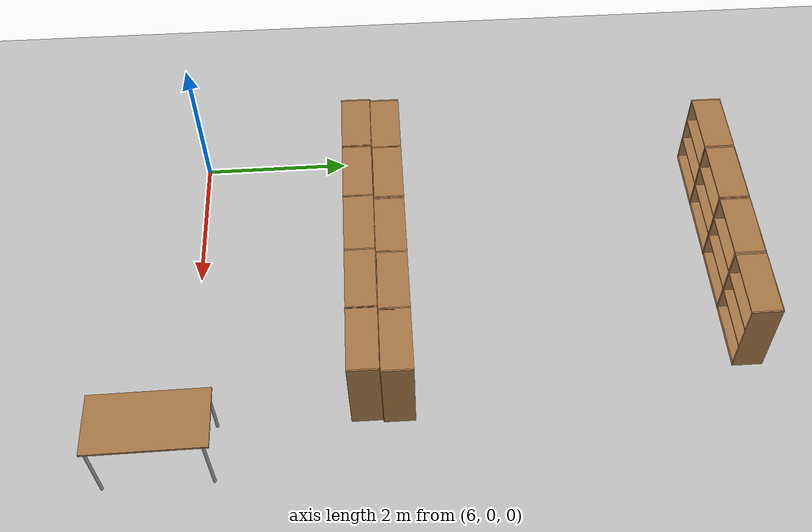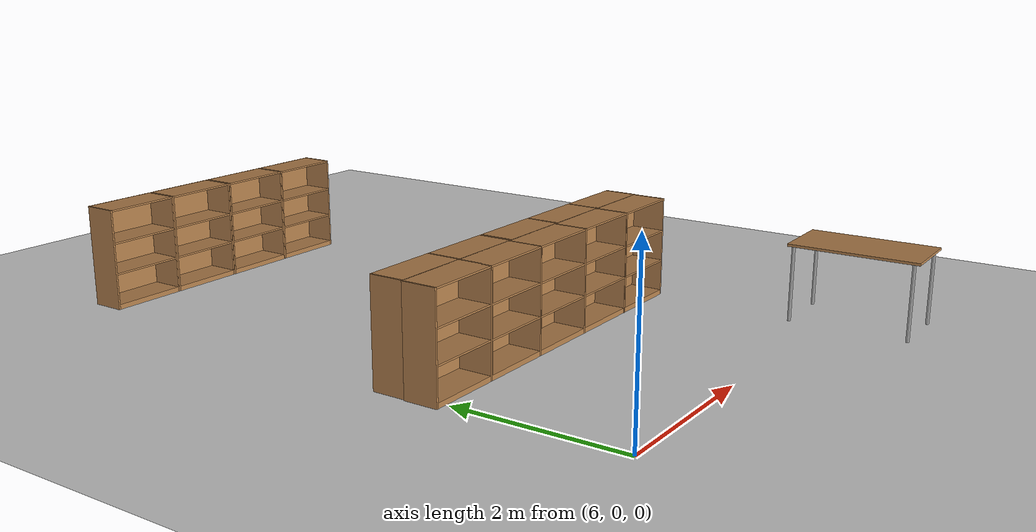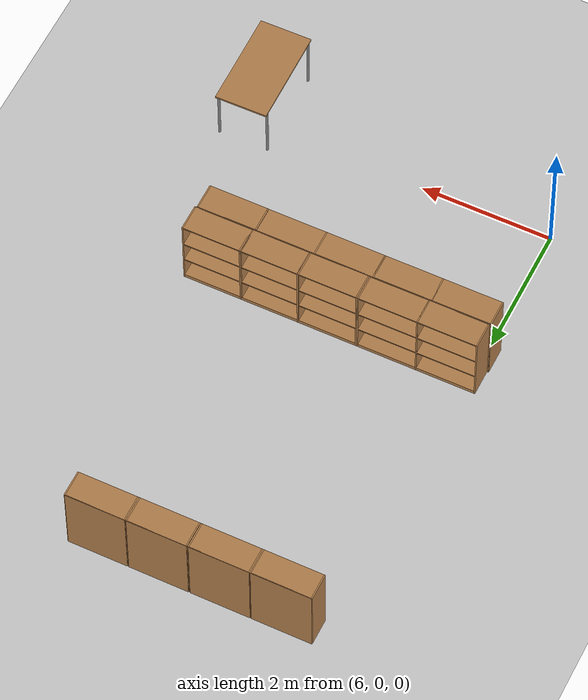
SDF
<sdf version="1.7">
 <world name="default">
  <model name="ground_plane">
   <static>1</static>
   <link name="ground_link">
    <collision name="collision">
     <geometry><plane><normal>0 0 1</normal><size>100 100</size></plane></geometry>
     <surface><friction><ode><mu>100</mu><mu2>50</mu2></ode></friction></surface>
    </collision>
    <visual name="visual">
     <cast_shadows>0</cast_shadows>
     <geometry><plane><normal>0 0 1</normal><size>100 100</size></plane></geometry>
     <material>
      <script><uri>file://media/materials/scripts/gazebo.material</uri><name>Gazebo/Grey</name></script>
     </material>
    </visual>
   </link>
  </model>
  <model name="bookshelf_clone_0_clone_0_clone_clone_clone_clone_clone_1_clone_clone_clone_clone_clone_clone_clone_clone_clone_clone_0_clone_clone_clone_clone_clone_0_clone_1_clone_clone">
   <static>1</static>
   <link name="link">
    <inertial><mass>1</mass></inertial>
    <collision name="back">
     <pose>0 0.005 0.6 0 -0 0</pose>
     <geometry><box><size>0.9 0.01 1.2</size></box></geometry>
    </collision>
    <visual name="visual1">
     <pose>0 0.005 0.6 0 -0 0</pose>
     <geometry><box><size>0.9 0.01 1.2</size></box></geometry>
     <material>
      <script><uri>file://media/materials/scripts/gazebo.material</uri><name>Gazebo/Wood</name></script>
     </material>
    </visual>
    <collision name="left_side">
     <pose>0.45 -0.195 0.6 0 -0 0</pose>
     <geometry><box><size>0.02 0.4 1.2</size></box></geometry>
    </collision>
    <visual name="visual2">
     <pose>0.45 -0.195 0.6 0 -0 0</pose>
     <geometry><box><size>0.02 0.4 1.2</size></box></geometry>
     <material>
      <script><uri>file://media/materials/scripts/gazebo.material</uri><name>Gazebo/Wood</name></script>
     </material>
    </visual>
    <collision name="right_side">
     <pose>-0.45 -0.195 0.6 0 -0 0</pose>
     <geometry><box><size>0.02 0.4 1.2</size></box></geometry>
    </collision>
    <visual name="visual3">
     <pose>-0.45 -0.195 0.6 0 -0 0</pose>
     <geometry><box><size>0.02 0.4 1.2</size></box></geometry>
     <material>
      <script><uri>file://media/materials/scripts/gazebo.material</uri><name>Gazebo/Wood</name></script>
     </material>
    </visual>
    <collision name="bottom">
     <pose>0 -0.195 0.03 0 -0 0</pose>
     <geometry><box><size>0.88 0.4 0.06</size></box></geometry>
    </collision>
    <visual name="visual4">
     <pose>0 -0.195 0.03 0 -0 0</pose>
     <geometry><box><size>0.88 0.4 0.06</size></box></geometry>
     <material>
      <script><uri>file://media/materials/scripts/gazebo.material</uri><name>Gazebo/Wood</name></script>
     </material>
    </visual>
    <collision name="top">
     <pose>0 -0.195 1.19 0 -0 0</pose>
     <geometry><box><size>0.88 0.4 0.02</size></box></geometry>
    </collision>
    <visual name="visual5">
     <pose>0 -0.195 1.19 0 -0 0</pose>
     <geometry><box><size>0.88 0.4 0.02</size></box></geometry>
     <material>
      <script><uri>file://media/materials/scripts/gazebo.material</uri><name>Gazebo/Wood</name></script>
     </material>
    </visual>
    <collision name="low_shelf">
     <pose>0 -0.195 0.43 0 -0 0</pose>
     <geometry><box><size>0.88 0.4 0.02</size></box></geometry>
    </collision>
    <visual name="visual6">
     <pose>0 -0.195 0.43 0 -0 0</pose>
     <geometry><box><size>0.88 0.4 0.02</size></box></geometry>
     <material>
      <script><uri>file://media/materials/scripts/gazebo.material</uri><name>Gazebo/Wood</name></script>
     </material>
    </visual>
    <collision name="high_shelf">
     <pose>0 -0.195 0.8 0 -0 0</pose>
     <geometry><box><size>0.88 0.4 0.02</size></box></geometry>
    </collision>
    <visual name="visual7">
     <pose>0 -0.195 0.8 0 -0 0</pose>
     <geometry><box><size>0.88 0.4 0.02</size></box></geometry>
     <material>
      <script><uri>file://media/materials/scripts/gazebo.material</uri><name>Gazebo/Wood</name></script>
     </material>
    </visual>
   </link>
   <pose>6.30514 2.42546 0.004614 0 -0 0.000147</pose>
  </model>
  <model name="bookshelf_clone_0_clone_0_clone_clone_clone_clone_clone_1_clone_clone_clone_clone_clone_clone_clone_clone_clone_clone_0_clone_clone_clone_clone_clone_0_clone_1_clone_clone_0">
   <static>1</static>
   <link name="link">
    <inertial><mass>1</mass></inertial>
    <collision name="back">
     <pose>0 0.005 0.6 0 -0 0</pose>
     <geometry><box><size>0.9 0.01 1.2</size></box></geometry>
    </collision>
    <visual name="visual1">
     <pose>0 0.005 0.6 0 -0 0</pose>
     <geometry><box><size>0.9 0.01 1.2</size></box></geometry>
     <material>
      <script><uri>file://media/materials/scripts/gazebo.material</uri><name>Gazebo/Wood</name></script>
     </material>
    </visual>
    <collision name="left_side">
     <pose>0.45 -0.195 0.6 0 -0 0</pose>
     <geometry><box><size>0.02 0.4 1.2</size></box></geometry>
    </collision>
    <visual name="visual2">
     <pose>0.45 -0.195 0.6 0 -0 0</pose>
     <geometry><box><size>0.02 0.4 1.2</size></box></geometry>
     <material>
      <script><uri>file://media/materials/scripts/gazebo.material</uri><name>Gazebo/Wood</name></script>
     </material>
    </visual>
    <collision name="right_side">
     <pose>-0.45 -0.195 0.6 0 -0 0</pose>
     <geometry><box><size>0.02 0.4 1.2</size></box></geometry>
    </collision>
    <visual name="visual3">
     <pose>-0.45 -0.195 0.6 0 -0 0</pose>
     <geometry><box><size>0.02 0.4 1.2</size></box></geometry>
     <material>
      <script><uri>file://media/materials/scripts/gazebo.material</uri><name>Gazebo/Wood</name></script>
     </material>
    </visual>
    <collision name="bottom">
     <pose>0 -0.195 0.03 0 -0 0</pose>
     <geometry><box><size>0.88 0.4 0.06</size></box></geometry>
    </collision>
    <visual name="visual4">
     <pose>0 -0.195 0.03 0 -0 0</pose>
     <geometry><box><size>0.88 0.4 0.06</size></box></geometry>
     <material>
      <script><uri>file://media/materials/scripts/gazebo.material</uri><name>Gazebo/Wood</name></script>
     </material>
    </visual>
    <collision name="top">
     <pose>0 -0.195 1.19 0 -0 0</pose>
     <geometry><box><size>0.88 0.4 0.02</size></box></geometry>
    </collision>
    <visual name="visual5">
     <pose>0 -0.195 1.19 0 -0 0</pose>
     <geometry><box><size>0.88 0.4 0.02</size></box></geometry>
     <material>
      <script><uri>file://media/materials/scripts/gazebo.material</uri><name>Gazebo/Wood</name></script>
     </material>
    </visual>
    <collision name="low_shelf">
     <pose>0 -0.195 0.43 0 -0 0</pose>
     <geometry><box><size>0.88 0.4 0.02</size></box></geometry>
    </collision>
    <visual name="visual6">
     <pose>0 -0.195 0.43 0 -0 0</pose>
     <geometry><box><size>0.88 0.4 0.02</size></box></geometry>
     <material>
      <script><uri>file://media/materials/scripts/gazebo.material</uri><name>Gazebo/Wood</name></script>
     </material>
    </visual>
    <collision name="high_shelf">
     <pose>0 -0.195 0.8 0 -0 0</pose>
     <geometry><box><size>0.88 0.4 0.02</size></box></geometry>
    </collision>
    <visual name="visual7">
     <pose>0 -0.195 0.8 0 -0 0</pose>
     <geometry><box><size>0.88 0.4 0.02</size></box></geometry>
     <material>
      <script><uri>file://media/materials/scripts/gazebo.material</uri><name>Gazebo/Wood</name></script>
     </material>
    </visual>
   </link>
   <pose>7.19071 2.42546 0.004614 0 -0 0.000147</pose>
  </model>
  <model name="bookshelf_clone_0_clone_0_clone_clone_clone_clone_clone_1_clone_clone_clone_clone_clone_clone_clone_clone_clone_clone_0_clone_clone_clone_clone_clone_0_clone_1_clone_clone_1">
   <static>1</static>
   <link name="link">
    <inertial><mass>1</mass></inertial>
    <collision name="back">
     <pose>0 0.005 0.6 0 -0 0</pose>
     <geometry><box><size>0.9 0.01 1.2</size></box></geometry>
    </collision>
    <visual name="visual1">
     <pose>0 0.005 0.6 0 -0 0</pose>
     <geometry><box><size>0.9 0.01 1.2</size></box></geometry>
     <material>
      <script><uri>file://media/materials/scripts/gazebo.material</uri><name>Gazebo/Wood</name></script>
     </material>
    </visual>
    <collision name="left_side">
     <pose>0.45 -0.195 0.6 0 -0 0</pose>
     <geometry><box><size>0.02 0.4 1.2</size></box></geometry>
    </collision>
    <visual name="visual2">
     <pose>0.45 -0.195 0.6 0 -0 0</pose>
     <geometry><box><size>0.02 0.4 1.2</size></box></geometry>
     <material>
      <script><uri>file://media/materials/scripts/gazebo.material</uri><name>Gazebo/Wood</name></script>
     </material>
    </visual>
    <collision name="right_side">
     <pose>-0.45 -0.195 0.6 0 -0 0</pose>
     <geometry><box><size>0.02 0.4 1.2</size></box></geometry>
    </collision>
    <visual name="visual3">
     <pose>-0.45 -0.195 0.6 0 -0 0</pose>
     <geometry><box><size>0.02 0.4 1.2</size></box></geometry>
     <material>
      <script><uri>file://media/materials/scripts/gazebo.material</uri><name>Gazebo/Wood</name></script>
     </material>
    </visual>
    <collision name="bottom">
     <pose>0 -0.195 0.03 0 -0 0</pose>
     <geometry><box><size>0.88 0.4 0.06</size></box></geometry>
    </collision>
    <visual name="visual4">
     <pose>0 -0.195 0.03 0 -0 0</pose>
     <geometry><box><size>0.88 0.4 0.06</size></box></geometry>
     <material>
      <script><uri>file://media/materials/scripts/gazebo.material</uri><name>Gazebo/Wood</name></script>
     </material>
    </visual>
    <collision name="top">
     <pose>0 -0.195 1.19 0 -0 0</pose>
     <geometry><box><size>0.88 0.4 0.02</size></box></geometry>
    </collision>
    <visual name="visual5">
     <pose>0 -0.195 1.19 0 -0 0</pose>
     <geometry><box><size>0.88 0.4 0.02</size></box></geometry>
     <material>
      <script><uri>file://media/materials/scripts/gazebo.material</uri><name>Gazebo/Wood</name></script>
     </material>
    </visual>
    <collision name="low_shelf">
     <pose>0 -0.195 0.43 0 -0 0</pose>
     <geometry><box><size>0.88 0.4 0.02</size></box></geometry>
    </collision>
    <visual name="visual6">
     <pose>0 -0.195 0.43 0 -0 0</pose>
     <geometry><box><size>0.88 0.4 0.02</size></box></geometry>
     <material>
      <script><uri>file://media/materials/scripts/gazebo.material</uri><name>Gazebo/Wood</name></script>
     </material>
    </visual>
    <collision name="high_shelf">
     <pose>0 -0.195 0.8 0 -0 0</pose>
     <geometry><box><size>0.88 0.4 0.02</size></box></geometry>
    </collision>
    <visual name="visual7">
     <pose>0 -0.195 0.8 0 -0 0</pose>
     <geometry><box><size>0.88 0.4 0.02</size></box></geometry>
     <material>
      <script><uri>file://media/materials/scripts/gazebo.material</uri><name>Gazebo/Wood</name></script>
     </material>
    </visual>
   </link>
   <pose>8.08736 2.42546 0.004614 0 -0 0.000147</pose>
  </model>
  <model name="bookshelf_clone_0_clone_0_clone_clone_clone_clone_clone_1_clone_clone_clone_clone_clone_clone_clone_clone_clone_clone_0_clone_clone_clone_clone_clone_0_clone_1_clone_clone_2">
   <static>1</static>
   <link name="link">
    <inertial><mass>1</mass></inertial>
    <collision name="back">
     <pose>0 0.005 0.6 0 -0 0</pose>
     <geometry><box><size>0.9 0.01 1.2</size></box></geometry>
    </collision>
    <visual name="visual1">
     <pose>0 0.005 0.6 0 -0 0</pose>
     <geometry><box><size>0.9 0.01 1.2</size></box></geometry>
     <material>
      <script><uri>file://media/materials/scripts/gazebo.material</uri><name>Gazebo/Wood</name></script>
     </material>
    </visual>
    <collision name="left_side">
     <pose>0.45 -0.195 0.6 0 -0 0</pose>
     <geometry><box><size>0.02 0.4 1.2</size></box></geometry>
    </collision>
    <visual name="visual2">
     <pose>0.45 -0.195 0.6 0 -0 0</pose>
     <geometry><box><size>0.02 0.4 1.2</size></box></geometry>
     <material>
      <script><uri>file://media/materials/scripts/gazebo.material</uri><name>Gazebo/Wood</name></script>
     </material>
    </visual>
    <collision name="right_side">
     <pose>-0.45 -0.195 0.6 0 -0 0</pose>
     <geometry><box><size>0.02 0.4 1.2</size></box></geometry>
    </collision>
    <visual name="visual3">
     <pose>-0.45 -0.195 0.6 0 -0 0</pose>
     <geometry><box><size>0.02 0.4 1.2</size></box></geometry>
     <material>
      <script><uri>file://media/materials/scripts/gazebo.material</uri><name>Gazebo/Wood</name></script>
     </material>
    </visual>
    <collision name="bottom">
     <pose>0 -0.195 0.03 0 -0 0</pose>
     <geometry><box><size>0.88 0.4 0.06</size></box></geometry>
    </collision>
    <visual name="visual4">
     <pose>0 -0.195 0.03 0 -0 0</pose>
     <geometry><box><size>0.88 0.4 0.06</size></box></geometry>
     <material>
      <script><uri>file://media/materials/scripts/gazebo.material</uri><name>Gazebo/Wood</name></script>
     </material>
    </visual>
    <collision name="top">
     <pose>0 -0.195 1.19 0 -0 0</pose>
     <geometry><box><size>0.88 0.4 0.02</size></box></geometry>
    </collision>
    <visual name="visual5">
     <pose>0 -0.195 1.19 0 -0 0</pose>
     <geometry><box><size>0.88 0.4 0.02</size></box></geometry>
     <material>
      <script><uri>file://media/materials/scripts/gazebo.material</uri><name>Gazebo/Wood</name></script>
     </material>
    </visual>
    <collision name="low_shelf">
     <pose>0 -0.195 0.43 0 -0 0</pose>
     <geometry><box><size>0.88 0.4 0.02</size></box></geometry>
    </collision>
    <visual name="visual6">
     <pose>0 -0.195 0.43 0 -0 0</pose>
     <geometry><box><size>0.88 0.4 0.02</size></box></geometry>
     <material>
      <script><uri>file://media/materials/scripts/gazebo.material</uri><name>Gazebo/Wood</name></script>
     </material>
    </visual>
    <collision name="high_shelf">
     <pose>0 -0.195 0.8 0 -0 0</pose>
     <geometry><box><size>0.88 0.4 0.02</size></box></geometry>
    </collision>
    <visual name="visual7">
     <pose>0 -0.195 0.8 0 -0 0</pose>
     <geometry><box><size>0.88 0.4 0.02</size></box></geometry>
     <material>
      <script><uri>file://media/materials/scripts/gazebo.material</uri><name>Gazebo/Wood</name></script>
     </material>
    </visual>
   </link>
   <pose>8.98744 2.42546 0.004614 0 -0 0.000147</pose>
  </model>
  <model name="bookshelf_clone_0_clone_0_clone_clone_clone_clone_clone_1_clone_clone_clone_clone_clone_clone_clone_clone_clone_clone_0_clone_clone_clone_clone_clone_0_clone_1_clone_clone_2_clone">
   <static>1</static>
   <link name="link">
    <inertial><mass>1</mass></inertial>
    <collision name="back">
     <pose>0 0.005 0.6 0 -0 0</pose>
     <geometry><box><size>0.9 0.01 1.2</size></box></geometry>
    </collision>
    <visual name="visual1">
     <pose>0 0.005 0.6 0 -0 0</pose>
     <geometry><box><size>0.9 0.01 1.2</size></box></geometry>
     <material>
      <script><uri>file://media/materials/scripts/gazebo.material</uri><name>Gazebo/Wood</name></script>
     </material>
    </visual>
    <collision name="left_side">
     <pose>0.45 -0.195 0.6 0 -0 0</pose>
     <geometry><box><size>0.02 0.4 1.2</size></box></geometry>
    </collision>
    <visual name="visual2">
     <pose>0.45 -0.195 0.6 0 -0 0</pose>
     <geometry><box><size>0.02 0.4 1.2</size></box></geometry>
     <material>
      <script><uri>file://media/materials/scripts/gazebo.material</uri><name>Gazebo/Wood</name></script>
     </material>
    </visual>
    <collision name="right_side">
     <pose>-0.45 -0.195 0.6 0 -0 0</pose>
     <geometry><box><size>0.02 0.4 1.2</size></box></geometry>
    </collision>
    <visual name="visual3">
     <pose>-0.45 -0.195 0.6 0 -0 0</pose>
     <geometry><box><size>0.02 0.4 1.2</size></box></geometry>
     <material>
      <script><uri>file://media/materials/scripts/gazebo.material</uri><name>Gazebo/Wood</name></script>
     </material>
    </visual>
    <collision name="bottom">
     <pose>0 -0.195 0.03 0 -0 0</pose>
     <geometry><box><size>0.88 0.4 0.06</size></box></geometry>
    </collision>
    <visual name="visual4">
     <pose>0 -0.195 0.03 0 -0 0</pose>
     <geometry><box><size>0.88 0.4 0.06</size></box></geometry>
     <material>
      <script><uri>file://media/materials/scripts/gazebo.material</uri><name>Gazebo/Wood</name></script>
     </material>
    </visual>
    <collision name="top">
     <pose>0 -0.195 1.19 0 -0 0</pose>
     <geometry><box><size>0.88 0.4 0.02</size></box></geometry>
    </collision>
    <visual name="visual5">
     <pose>0 -0.195 1.19 0 -0 0</pose>
     <geometry><box><size>0.88 0.4 0.02</size></box></geometry>
     <material>
      <script><uri>file://media/materials/scripts/gazebo.material</uri><name>Gazebo/Wood</name></script>
     </material>
    </visual>
    <collision name="low_shelf">
     <pose>0 -0.195 0.43 0 -0 0</pose>
     <geometry><box><size>0.88 0.4 0.02</size></box></geometry>
    </collision>
    <visual name="visual6">
     <pose>0 -0.195 0.43 0 -0 0</pose>
     <geometry><box><size>0.88 0.4 0.02</size></box></geometry>
     <material>
      <script><uri>file://media/materials/scripts/gazebo.material</uri><name>Gazebo/Wood</name></script>
     </material>
    </visual>
    <collision name="high_shelf">
     <pose>0 -0.195 0.8 0 -0 0</pose>
     <geometry><box><size>0.88 0.4 0.02</size></box></geometry>
    </collision>
    <visual name="visual7">
     <pose>0 -0.195 0.8 0 -0 0</pose>
     <geometry><box><size>0.88 0.4 0.02</size></box></geometry>
     <material>
      <script><uri>file://media/materials/scripts/gazebo.material</uri><name>Gazebo/Wood</name></script>
     </material>
    </visual>
   </link>
   <pose>9.89241 2.42311 0.004614 0 -0 0.000147</pose>
  </model>
  <model name="bookshelf_clone_0_clone_0_clone_clone_clone_0_clone_clone">
   <static>1</static>
   <link name="link">
    <inertial><mass>1</mass></inertial>
    <collision name="back">
     <pose>0 0.005 0.6 0 -0 0</pose>
     <geometry><box><size>0.9 0.01 1.2</size></box></geometry>
    </collision>
    <visual name="visual1">
     <pose>0 0.005 0.6 0 -0 0</pose>
     <geometry><box><size>0.9 0.01 1.2</size></box></geometry>
     <material>
      <script><uri>file://media/materials/scripts/gazebo.material</uri><name>Gazebo/Wood</name></script>
     </material>
    </visual>
    <collision name="left_side">
     <pose>0.45 -0.195 0.6 0 -0 0</pose>
     <geometry><box><size>0.02 0.4 1.2</size></box></geometry>
    </collision>
    <visual name="visual2">
     <pose>0.45 -0.195 0.6 0 -0 0</pose>
     <geometry><box><size>0.02 0.4 1.2</size></box></geometry>
     <material>
      <script><uri>file://media/materials/scripts/gazebo.material</uri><name>Gazebo/Wood</name></script>
     </material>
    </visual>
    <collision name="right_side">
     <pose>-0.45 -0.195 0.6 0 -0 0</pose>
     <geometry><box><size>0.02 0.4 1.2</size></box></geometry>
    </collision>
    <visual name="visual3">
     <pose>-0.45 -0.195 0.6 0 -0 0</pose>
     <geometry><box><size>0.02 0.4 1.2</size></box></geometry>
     <material>
      <script><uri>file://media/materials/scripts/gazebo.material</uri><name>Gazebo/Wood</name></script>
     </material>
    </visual>
    <collision name="bottom">
     <pose>0 -0.195 0.03 0 -0 0</pose>
     <geometry><box><size>0.88 0.4 0.06</size></box></geometry>
    </collision>
    <visual name="visual4">
     <pose>0 -0.195 0.03 0 -0 0</pose>
     <geometry><box><size>0.88 0.4 0.06</size></box></geometry>
     <material>
      <script><uri>file://media/materials/scripts/gazebo.material</uri><name>Gazebo/Wood</name></script>
     </material>
    </visual>
    <collision name="top">
     <pose>0 -0.195 1.19 0 -0 0</pose>
     <geometry><box><size>0.88 0.4 0.02</size></box></geometry>
    </collision>
    <visual name="visual5">
     <pose>0 -0.195 1.19 0 -0 0</pose>
     <geometry><box><size>0.88 0.4 0.02</size></box></geometry>
     <material>
      <script><uri>file://media/materials/scripts/gazebo.material</uri><name>Gazebo/Wood</name></script>
     </material>
    </visual>
    <collision name="low_shelf">
     <pose>0 -0.195 0.43 0 -0 0</pose>
     <geometry><box><size>0.88 0.4 0.02</size></box></geometry>
    </collision>
    <visual name="visual6">
     <pose>0 -0.195 0.43 0 -0 0</pose>
     <geometry><box><size>0.88 0.4 0.02</size></box></geometry>
     <material>
      <script><uri>file://media/materials/scripts/gazebo.material</uri><name>Gazebo/Wood</name></script>
     </material>
    </visual>
    <collision name="high_shelf">
     <pose>0 -0.195 0.8 0 -0 0</pose>
     <geometry><box><size>0.88 0.4 0.02</size></box></geometry>
    </collision>
    <visual name="visual7">
     <pose>0 -0.195 0.8 0 -0 0</pose>
     <geometry><box><size>0.88 0.4 0.02</size></box></geometry>
     <material>
      <script><uri>file://media/materials/scripts/gazebo.material</uri><name>Gazebo/Wood</name></script>
     </material>
    </visual>
   </link>
   <pose>9.92287 2.44108 0 0 0 -3.14107</pose>
  </model>
  <model name="bookshelf_clone_0_clone_0_clone_clone_clone_0_clone_clone_0">
   <static>1</static>
   <link name="link">
    <inertial><mass>1</mass></inertial>
    <collision name="back">
     <pose>0 0.005 0.6 0 -0 0</pose>
     <geometry><box><size>0.9 0.01 1.2</size></box></geometry>
    </collision>
    <visual name="visual1">
     <pose>0 0.005 0.6 0 -0 0</pose>
     <geometry><box><size>0.9 0.01 1.2</size></box></geometry>
     <material>
      <script><uri>file://media/materials/scripts/gazebo.material</uri><name>Gazebo/Wood</name></script>
     </material>
    </visual>
    <collision name="left_side">
     <pose>0.45 -0.195 0.6 0 -0 0</pose>
     <geometry><box><size>0.02 0.4 1.2</size></box></geometry>
    </collision>
    <visual name="visual2">
     <pose>0.45 -0.195 0.6 0 -0 0</pose>
     <geometry><box><size>0.02 0.4 1.2</size></box></geometry>
     <material>
      <script><uri>file://media/materials/scripts/gazebo.material</uri><name>Gazebo/Wood</name></script>
     </material>
    </visual>
    <collision name="right_side">
     <pose>-0.45 -0.195 0.6 0 -0 0</pose>
     <geometry><box><size>0.02 0.4 1.2</size></box></geometry>
    </collision>
    <visual name="visual3">
     <pose>-0.45 -0.195 0.6 0 -0 0</pose>
     <geometry><box><size>0.02 0.4 1.2</size></box></geometry>
     <material>
      <script><uri>file://media/materials/scripts/gazebo.material</uri><name>Gazebo/Wood</name></script>
     </material>
    </visual>
    <collision name="bottom">
     <pose>0 -0.195 0.03 0 -0 0</pose>
     <geometry><box><size>0.88 0.4 0.06</size></box></geometry>
    </collision>
    <visual name="visual4">
     <pose>0 -0.195 0.03 0 -0 0</pose>
     <geometry><box><size>0.88 0.4 0.06</size></box></geometry>
     <material>
      <script><uri>file://media/materials/scripts/gazebo.material</uri><name>Gazebo/Wood</name></script>
     </material>
    </visual>
    <collision name="top">
     <pose>0 -0.195 1.19 0 -0 0</pose>
     <geometry><box><size>0.88 0.4 0.02</size></box></geometry>
    </collision>
    <visual name="visual5">
     <pose>0 -0.195 1.19 0 -0 0</pose>
     <geometry><box><size>0.88 0.4 0.02</size></box></geometry>
     <material>
      <script><uri>file://media/materials/scripts/gazebo.material</uri><name>Gazebo/Wood</name></script>
     </material>
    </visual>
    <collision name="low_shelf">
     <pose>0 -0.195 0.43 0 -0 0</pose>
     <geometry><box><size>0.88 0.4 0.02</size></box></geometry>
    </collision>
    <visual name="visual6">
     <pose>0 -0.195 0.43 0 -0 0</pose>
     <geometry><box><size>0.88 0.4 0.02</size></box></geometry>
     <material>
      <script><uri>file://media/materials/scripts/gazebo.material</uri><name>Gazebo/Wood</name></script>
     </material>
    </visual>
    <collision name="high_shelf">
     <pose>0 -0.195 0.8 0 -0 0</pose>
     <geometry><box><size>0.88 0.4 0.02</size></box></geometry>
    </collision>
    <visual name="visual7">
     <pose>0 -0.195 0.8 0 -0 0</pose>
     <geometry><box><size>0.88 0.4 0.02</size></box></geometry>
     <material>
      <script><uri>file://media/materials/scripts/gazebo.material</uri><name>Gazebo/Wood</name></script>
     </material>
    </visual>
   </link>
   <pose>9.03991 2.44108 0 0 0 -3.14107</pose>
  </model>
  <model name="bookshelf_clone_0_clone_0_clone_clone_clone_0_clone_clone_1">
   <static>1</static>
   <link name="link">
    <inertial><mass>1</mass></inertial>
    <collision name="back">
     <pose>0 0.005 0.6 0 -0 0</pose>
     <geometry><box><size>0.9 0.01 1.2</size></box></geometry>
    </collision>
    <visual name="visual1">
     <pose>0 0.005 0.6 0 -0 0</pose>
     <geometry><box><size>0.9 0.01 1.2</size></box></geometry>
     <material>
      <script><uri>file://media/materials/scripts/gazebo.material</uri><name>Gazebo/Wood</name></script>
     </material>
    </visual>
    <collision name="left_side">
     <pose>0.45 -0.195 0.6 0 -0 0</pose>
     <geometry><box><size>0.02 0.4 1.2</size></box></geometry>
    </collision>
    <visual name="visual2">
     <pose>0.45 -0.195 0.6 0 -0 0</pose>
     <geometry><box><size>0.02 0.4 1.2</size></box></geometry>
     <material>
      <script><uri>file://media/materials/scripts/gazebo.material</uri><name>Gazebo/Wood</name></script>
     </material>
    </visual>
    <collision name="right_side">
     <pose>-0.45 -0.195 0.6 0 -0 0</pose>
     <geometry><box><size>0.02 0.4 1.2</size></box></geometry>
    </collision>
    <visual name="visual3">
     <pose>-0.45 -0.195 0.6 0 -0 0</pose>
     <geometry><box><size>0.02 0.4 1.2</size></box></geometry>
     <material>
      <script><uri>file://media/materials/scripts/gazebo.material</uri><name>Gazebo/Wood</name></script>
     </material>
    </visual>
    <collision name="bottom">
     <pose>0 -0.195 0.03 0 -0 0</pose>
     <geometry><box><size>0.88 0.4 0.06</size></box></geometry>
    </collision>
    <visual name="visual4">
     <pose>0 -0.195 0.03 0 -0 0</pose>
     <geometry><box><size>0.88 0.4 0.06</size></box></geometry>
     <material>
      <script><uri>file://media/materials/scripts/gazebo.material</uri><name>Gazebo/Wood</name></script>
     </material>
    </visual>
    <collision name="top">
     <pose>0 -0.195 1.19 0 -0 0</pose>
     <geometry><box><size>0.88 0.4 0.02</size></box></geometry>
    </collision>
    <visual name="visual5">
     <pose>0 -0.195 1.19 0 -0 0</pose>
     <geometry><box><size>0.88 0.4 0.02</size></box></geometry>
     <material>
      <script><uri>file://media/materials/scripts/gazebo.material</uri><name>Gazebo/Wood</name></script>
     </material>
    </visual>
    <collision name="low_shelf">
     <pose>0 -0.195 0.43 0 -0 0</pose>
     <geometry><box><size>0.88 0.4 0.02</size></box></geometry>
    </collision>
    <visual name="visual6">
     <pose>0 -0.195 0.43 0 -0 0</pose>
     <geometry><box><size>0.88 0.4 0.02</size></box></geometry>
     <material>
      <script><uri>file://media/materials/scripts/gazebo.material</uri><name>Gazebo/Wood</name></script>
     </material>
    </visual>
    <collision name="high_shelf">
     <pose>0 -0.195 0.8 0 -0 0</pose>
     <geometry><box><size>0.88 0.4 0.02</size></box></geometry>
    </collision>
    <visual name="visual7">
     <pose>0 -0.195 0.8 0 -0 0</pose>
     <geometry><box><size>0.88 0.4 0.02</size></box></geometry>
     <material>
      <script><uri>file://media/materials/scripts/gazebo.material</uri><name>Gazebo/Wood</name></script>
     </material>
    </visual>
   </link>
   <pose>8.15073 2.44108 0 0 0 -3.14107</pose>
  </model>
  <model name="bookshelf_clone_0_clone_0_clone_clone_clone_0_clone_clone_1_clone">
   <static>1</static>
   <link name="link">
    <inertial><mass>1</mass></inertial>
    <collision name="back">
     <pose>0 0.005 0.6 0 -0 0</pose>
     <geometry><box><size>0.9 0.01 1.2</size></box></geometry>
    </collision>
    <visual name="visual1">
     <pose>0 0.005 0.6 0 -0 0</pose>
     <geometry><box><size>0.9 0.01 1.2</size></box></geometry>
     <material>
      <script><uri>file://media/materials/scripts/gazebo.material</uri><name>Gazebo/Wood</name></script>
     </material>
    </visual>
    <collision name="left_side">
     <pose>0.45 -0.195 0.6 0 -0 0</pose>
     <geometry><box><size>0.02 0.4 1.2</size></box></geometry>
    </collision>
    <visual name="visual2">
     <pose>0.45 -0.195 0.6 0 -0 0</pose>
     <geometry><box><size>0.02 0.4 1.2</size></box></geometry>
     <material>
      <script><uri>file://media/materials/scripts/gazebo.material</uri><name>Gazebo/Wood</name></script>
     </material>
    </visual>
    <collision name="right_side">
     <pose>-0.45 -0.195 0.6 0 -0 0</pose>
     <geometry><box><size>0.02 0.4 1.2</size></box></geometry>
    </collision>
    <visual name="visual3">
     <pose>-0.45 -0.195 0.6 0 -0 0</pose>
     <geometry><box><size>0.02 0.4 1.2</size></box></geometry>
     <material>
      <script><uri>file://media/materials/scripts/gazebo.material</uri><name>Gazebo/Wood</name></script>
     </material>
    </visual>
    <collision name="bottom">
     <pose>0 -0.195 0.03 0 -0 0</pose>
     <geometry><box><size>0.88 0.4 0.06</size></box></geometry>
    </collision>
    <visual name="visual4">
     <pose>0 -0.195 0.03 0 -0 0</pose>
     <geometry><box><size>0.88 0.4 0.06</size></box></geometry>
     <material>
      <script><uri>file://media/materials/scripts/gazebo.material</uri><name>Gazebo/Wood</name></script>
     </material>
    </visual>
    <collision name="top">
     <pose>0 -0.195 1.19 0 -0 0</pose>
     <geometry><box><size>0.88 0.4 0.02</size></box></geometry>
    </collision>
    <visual name="visual5">
     <pose>0 -0.195 1.19 0 -0 0</pose>
     <geometry><box><size>0.88 0.4 0.02</size></box></geometry>
     <material>
      <script><uri>file://media/materials/scripts/gazebo.material</uri><name>Gazebo/Wood</name></script>
     </material>
    </visual>
    <collision name="low_shelf">
     <pose>0 -0.195 0.43 0 -0 0</pose>
     <geometry><box><size>0.88 0.4 0.02</size></box></geometry>
    </collision>
    <visual name="visual6">
     <pose>0 -0.195 0.43 0 -0 0</pose>
     <geometry><box><size>0.88 0.4 0.02</size></box></geometry>
     <material>
      <script><uri>file://media/materials/scripts/gazebo.material</uri><name>Gazebo/Wood</name></script>
     </material>
    </visual>
    <collision name="high_shelf">
     <pose>0 -0.195 0.8 0 -0 0</pose>
     <geometry><box><size>0.88 0.4 0.02</size></box></geometry>
    </collision>
    <visual name="visual7">
     <pose>0 -0.195 0.8 0 -0 0</pose>
     <geometry><box><size>0.88 0.4 0.02</size></box></geometry>
     <material>
      <script><uri>file://media/materials/scripts/gazebo.material</uri><name>Gazebo/Wood</name></script>
     </material>
    </visual>
   </link>
   <pose>7.22796 2.44108 0 0 0 -3.14107</pose>
  </model>
  <model name="bookshelf_clone_0_clone_0_clone_clone_clone_0_clone_clone_1_clone_0">
   <static>1</static>
   <link name="link">
    <inertial><mass>1</mass></inertial>
    <collision name="back">
     <pose>0 0.005 0.6 0 -0 0</pose>
     <geometry><box><size>0.9 0.01 1.2</size></box></geometry>
    </collision>
    <visual name="visual1">
     <pose>0 0.005 0.6 0 -0 0</pose>
     <geometry><box><size>0.9 0.01 1.2</size></box></geometry>
     <material>
      <script><uri>file://media/materials/scripts/gazebo.material</uri><name>Gazebo/Wood</name></script>
     </material>
    </visual>
    <collision name="left_side">
     <pose>0.45 -0.195 0.6 0 -0 0</pose>
     <geometry><box><size>0.02 0.4 1.2</size></box></geometry>
    </collision>
    <visual name="visual2">
     <pose>0.45 -0.195 0.6 0 -0 0</pose>
     <geometry><box><size>0.02 0.4 1.2</size></box></geometry>
     <material>
      <script><uri>file://media/materials/scripts/gazebo.material</uri><name>Gazebo/Wood</name></script>
     </material>
    </visual>
    <collision name="right_side">
     <pose>-0.45 -0.195 0.6 0 -0 0</pose>
     <geometry><box><size>0.02 0.4 1.2</size></box></geometry>
    </collision>
    <visual name="visual3">
     <pose>-0.45 -0.195 0.6 0 -0 0</pose>
     <geometry><box><size>0.02 0.4 1.2</size></box></geometry>
     <material>
      <script><uri>file://media/materials/scripts/gazebo.material</uri><name>Gazebo/Wood</name></script>
     </material>
    </visual>
    <collision name="bottom">
     <pose>0 -0.195 0.03 0 -0 0</pose>
     <geometry><box><size>0.88 0.4 0.06</size></box></geometry>
    </collision>
    <visual name="visual4">
     <pose>0 -0.195 0.03 0 -0 0</pose>
     <geometry><box><size>0.88 0.4 0.06</size></box></geometry>
     <material>
      <script><uri>file://media/materials/scripts/gazebo.material</uri><name>Gazebo/Wood</name></script>
     </material>
    </visual>
    <collision name="top">
     <pose>0 -0.195 1.19 0 -0 0</pose>
     <geometry><box><size>0.88 0.4 0.02</size></box></geometry>
    </collision>
    <visual name="visual5">
     <pose>0 -0.195 1.19 0 -0 0</pose>
     <geometry><box><size>0.88 0.4 0.02</size></box></geometry>
     <material>
      <script><uri>file://media/materials/scripts/gazebo.material</uri><name>Gazebo/Wood</name></script>
     </material>
    </visual>
    <collision name="low_shelf">
     <pose>0 -0.195 0.43 0 -0 0</pose>
     <geometry><box><size>0.88 0.4 0.02</size></box></geometry>
    </collision>
    <visual name="visual6">
     <pose>0 -0.195 0.43 0 -0 0</pose>
     <geometry><box><size>0.88 0.4 0.02</size></box></geometry>
     <material>
      <script><uri>file://media/materials/scripts/gazebo.material</uri><name>Gazebo/Wood</name></script>
     </material>
    </visual>
    <collision name="high_shelf">
     <pose>0 -0.195 0.8 0 -0 0</pose>
     <geometry><box><size>0.88 0.4 0.02</size></box></geometry>
    </collision>
    <visual name="visual7">
     <pose>0 -0.195 0.8 0 -0 0</pose>
     <geometry><box><size>0.88 0.4 0.02</size></box></geometry>
     <material>
      <script><uri>file://media/materials/scripts/gazebo.material</uri><name>Gazebo/Wood</name></script>
     </material>
    </visual>
   </link>
   <pose>6.33009 2.44108 0 0 0 -3.14107</pose>
  </model>
  <model name="bookshelf_clone_0_clone_0_clone_clone_clone_clone_clone_1_clone_clone_clone_clone_clone_clone_clone_clone_clone_clone_0_clone_clone_clone_clone_clone_0_clone_1_clone_0_clone">
   <static>1</static>
   <link name="link">
    <inertial><mass>1</mass></inertial>
    <collision name="back">
     <pose>0 0.005 0.6 0 -0 0</pose>
     <geometry><box><size>0.9 0.01 1.2</size></box></geometry>
    </collision>
    <visual name="visual1">
     <pose>0 0.005 0.6 0 -0 0</pose>
     <geometry><box><size>0.9 0.01 1.2</size></box></geometry>
     <material>
      <script><uri>file://media/materials/scripts/gazebo.material</uri><name>Gazebo/Wood</name></script>
     </material>
    </visual>
    <collision name="left_side">
     <pose>0.45 -0.195 0.6 0 -0 0</pose>
     <geometry><box><size>0.02 0.4 1.2</size></box></geometry>
    </collision>
    <visual name="visual2">
     <pose>0.45 -0.195 0.6 0 -0 0</pose>
     <geometry><box><size>0.02 0.4 1.2</size></box></geometry>
     <material>
      <script><uri>file://media/materials/scripts/gazebo.material</uri><name>Gazebo/Wood</name></script>
     </material>
    </visual>
    <collision name="right_side">
     <pose>-0.45 -0.195 0.6 0 -0 0</pose>
     <geometry><box><size>0.02 0.4 1.2</size></box></geometry>
    </collision>
    <visual name="visual3">
     <pose>-0.45 -0.195 0.6 0 -0 0</pose>
     <geometry><box><size>0.02 0.4 1.2</size></box></geometry>
     <material>
      <script><uri>file://media/materials/scripts/gazebo.material</uri><name>Gazebo/Wood</name></script>
     </material>
    </visual>
    <collision name="bottom">
     <pose>0 -0.195 0.03 0 -0 0</pose>
     <geometry><box><size>0.88 0.4 0.06</size></box></geometry>
    </collision>
    <visual name="visual4">
     <pose>0 -0.195 0.03 0 -0 0</pose>
     <geometry><box><size>0.88 0.4 0.06</size></box></geometry>
     <material>
      <script><uri>file://media/materials/scripts/gazebo.material</uri><name>Gazebo/Wood</name></script>
     </material>
    </visual>
    <collision name="top">
     <pose>0 -0.195 1.19 0 -0 0</pose>
     <geometry><box><size>0.88 0.4 0.02</size></box></geometry>
    </collision>
    <visual name="visual5">
     <pose>0 -0.195 1.19 0 -0 0</pose>
     <geometry><box><size>0.88 0.4 0.02</size></box></geometry>
     <material>
      <script><uri>file://media/materials/scripts/gazebo.material</uri><name>Gazebo/Wood</name></script>
     </material>
    </visual>
    <collision name="low_shelf">
     <pose>0 -0.195 0.43 0 -0 0</pose>
     <geometry><box><size>0.88 0.4 0.02</size></box></geometry>
    </collision>
    <visual name="visual6">
     <pose>0 -0.195 0.43 0 -0 0</pose>
     <geometry><box><size>0.88 0.4 0.02</size></box></geometry>
     <material>
      <script><uri>file://media/materials/scripts/gazebo.material</uri><name>Gazebo/Wood</name></script>
     </material>
    </visual>
    <collision name="high_shelf">
     <pose>0 -0.195 0.8 0 -0 0</pose>
     <geometry><box><size>0.88 0.4 0.02</size></box></geometry>
    </collision>
    <visual name="visual7">
     <pose>0 -0.195 0.8 0 -0 0</pose>
     <geometry><box><size>0.88 0.4 0.02</size></box></geometry>
     <material>
      <script><uri>file://media/materials/scripts/gazebo.material</uri><name>Gazebo/Wood</name></script>
     </material>
    </visual>
   </link>
   <pose>9.38071 7.38892 0.004614 0 -0 0.000147</pose>
  </model>
  <model name="bookshelf_clone_0_clone_0_clone_clone_clone_clone_clone_1_clone_clone_clone_clone_clone_clone_clone_clone_clone_clone_0_clone_clone_clone_clone_clone_0_clone_1_clone_0_clone_0">
   <static>1</static>
   <link name="link">
    <inertial><mass>1</mass></inertial>
    <collision name="back">
     <pose>0 0.005 0.6 0 -0 0</pose>
     <geometry><box><size>0.9 0.01 1.2</size></box></geometry>
    </collision>
    <visual name="visual1">
     <pose>0 0.005 0.6 0 -0 0</pose>
     <geometry><box><size>0.9 0.01 1.2</size></box></geometry>
     <material>
      <script><uri>file://media/materials/scripts/gazebo.material</uri><name>Gazebo/Wood</name></script>
     </material>
    </visual>
    <collision name="left_side">
     <pose>0.45 -0.195 0.6 0 -0 0</pose>
     <geometry><box><size>0.02 0.4 1.2</size></box></geometry>
    </collision>
    <visual name="visual2">
     <pose>0.45 -0.195 0.6 0 -0 0</pose>
     <geometry><box><size>0.02 0.4 1.2</size></box></geometry>
     <material>
      <script><uri>file://media/materials/scripts/gazebo.material</uri><name>Gazebo/Wood</name></script>
     </material>
    </visual>
    <collision name="right_side">
     <pose>-0.45 -0.195 0.6 0 -0 0</pose>
     <geometry><box><size>0.02 0.4 1.2</size></box></geometry>
    </collision>
    <visual name="visual3">
     <pose>-0.45 -0.195 0.6 0 -0 0</pose>
     <geometry><box><size>0.02 0.4 1.2</size></box></geometry>
     <material>
      <script><uri>file://media/materials/scripts/gazebo.material</uri><name>Gazebo/Wood</name></script>
     </material>
    </visual>
    <collision name="bottom">
     <pose>0 -0.195 0.03 0 -0 0</pose>
     <geometry><box><size>0.88 0.4 0.06</size></box></geometry>
    </collision>
    <visual name="visual4">
     <pose>0 -0.195 0.03 0 -0 0</pose>
     <geometry><box><size>0.88 0.4 0.06</size></box></geometry>
     <material>
      <script><uri>file://media/materials/scripts/gazebo.material</uri><name>Gazebo/Wood</name></script>
     </material>
    </visual>
    <collision name="top">
     <pose>0 -0.195 1.19 0 -0 0</pose>
     <geometry><box><size>0.88 0.4 0.02</size></box></geometry>
    </collision>
    <visual name="visual5">
     <pose>0 -0.195 1.19 0 -0 0</pose>
     <geometry><box><size>0.88 0.4 0.02</size></box></geometry>
     <material>
      <script><uri>file://media/materials/scripts/gazebo.material</uri><name>Gazebo/Wood</name></script>
     </material>
    </visual>
    <collision name="low_shelf">
     <pose>0 -0.195 0.43 0 -0 0</pose>
     <geometry><box><size>0.88 0.4 0.02</size></box></geometry>
    </collision>
    <visual name="visual6">
     <pose>0 -0.195 0.43 0 -0 0</pose>
     <geometry><box><size>0.88 0.4 0.02</size></box></geometry>
     <material>
      <script><uri>file://media/materials/scripts/gazebo.material</uri><name>Gazebo/Wood</name></script>
     </material>
    </visual>
    <collision name="high_shelf">
     <pose>0 -0.195 0.8 0 -0 0</pose>
     <geometry><box><size>0.88 0.4 0.02</size></box></geometry>
    </collision>
    <visual name="visual7">
     <pose>0 -0.195 0.8 0 -0 0</pose>
     <geometry><box><size>0.88 0.4 0.02</size></box></geometry>
     <material>
      <script><uri>file://media/materials/scripts/gazebo.material</uri><name>Gazebo/Wood</name></script>
     </material>
    </visual>
   </link>
   <pose>8.46019 7.38892 0.004614 0 -0 0.000147</pose>
  </model>
  <model name="bookshelf_clone_0_clone_0_clone_clone_clone_clone_clone_1_clone_clone_clone_clone_clone_clone_clone_clone_clone_clone_0_clone_clone_clone_clone_clone_0_clone_1_clone_0_clone_1">
   <static>1</static>
   <link name="link">
    <inertial><mass>1</mass></inertial>
    <collision name="back">
     <pose>0 0.005 0.6 0 -0 0</pose>
     <geometry><box><size>0.9 0.01 1.2</size></box></geometry>
    </collision>
    <visual name="visual1">
     <pose>0 0.005 0.6 0 -0 0</pose>
     <geometry><box><size>0.9 0.01 1.2</size></box></geometry>
     <material>
      <script><uri>file://media/materials/scripts/gazebo.material</uri><name>Gazebo/Wood</name></script>
     </material>
    </visual>
    <collision name="left_side">
     <pose>0.45 -0.195 0.6 0 -0 0</pose>
     <geometry><box><size>0.02 0.4 1.2</size></box></geometry>
    </collision>
    <visual name="visual2">
     <pose>0.45 -0.195 0.6 0 -0 0</pose>
     <geometry><box><size>0.02 0.4 1.2</size></box></geometry>
     <material>
      <script><uri>file://media/materials/scripts/gazebo.material</uri><name>Gazebo/Wood</name></script>
     </material>
    </visual>
    <collision name="right_side">
     <pose>-0.45 -0.195 0.6 0 -0 0</pose>
     <geometry><box><size>0.02 0.4 1.2</size></box></geometry>
    </collision>
    <visual name="visual3">
     <pose>-0.45 -0.195 0.6 0 -0 0</pose>
     <geometry><box><size>0.02 0.4 1.2</size></box></geometry>
     <material>
      <script><uri>file://media/materials/scripts/gazebo.material</uri><name>Gazebo/Wood</name></script>
     </material>
    </visual>
    <collision name="bottom">
     <pose>0 -0.195 0.03 0 -0 0</pose>
     <geometry><box><size>0.88 0.4 0.06</size></box></geometry>
    </collision>
    <visual name="visual4">
     <pose>0 -0.195 0.03 0 -0 0</pose>
     <geometry><box><size>0.88 0.4 0.06</size></box></geometry>
     <material>
      <script><uri>file://media/materials/scripts/gazebo.material</uri><name>Gazebo/Wood</name></script>
     </material>
    </visual>
    <collision name="top">
     <pose>0 -0.195 1.19 0 -0 0</pose>
     <geometry><box><size>0.88 0.4 0.02</size></box></geometry>
    </collision>
    <visual name="visual5">
     <pose>0 -0.195 1.19 0 -0 0</pose>
     <geometry><box><size>0.88 0.4 0.02</size></box></geometry>
     <material>
      <script><uri>file://media/materials/scripts/gazebo.material</uri><name>Gazebo/Wood</name></script>
     </material>
    </visual>
    <collision name="low_shelf">
     <pose>0 -0.195 0.43 0 -0 0</pose>
     <geometry><box><size>0.88 0.4 0.02</size></box></geometry>
    </collision>
    <visual name="visual6">
     <pose>0 -0.195 0.43 0 -0 0</pose>
     <geometry><box><size>0.88 0.4 0.02</size></box></geometry>
     <material>
      <script><uri>file://media/materials/scripts/gazebo.material</uri><name>Gazebo/Wood</name></script>
     </material>
    </visual>
    <collision name="high_shelf">
     <pose>0 -0.195 0.8 0 -0 0</pose>
     <geometry><box><size>0.88 0.4 0.02</size></box></geometry>
    </collision>
    <visual name="visual7">
     <pose>0 -0.195 0.8 0 -0 0</pose>
     <geometry><box><size>0.88 0.4 0.02</size></box></geometry>
     <material>
      <script><uri>file://media/materials/scripts/gazebo.material</uri><name>Gazebo/Wood</name></script>
     </material>
    </visual>
   </link>
   <pose>7.53456 7.38892 0.004614 0 -0 0.000147</pose>
  </model>
  <model name="bookshelf_clone_0_clone_0_clone_clone_clone_clone_clone_1_clone_clone_clone_clone_clone_clone_clone_clone_clone_clone_0_clone_clone_clone_clone_clone_0_clone_1_clone_0_clone_1_clone">
   <static>1</static>
   <link name="link">
    <inertial><mass>1</mass></inertial>
    <collision name="back">
     <pose>0 0.005 0.6 0 -0 0</pose>
     <geometry><box><size>0.9 0.01 1.2</size></box></geometry>
    </collision>
    <visual name="visual1">
     <pose>0 0.005 0.6 0 -0 0</pose>
     <geometry><box><size>0.9 0.01 1.2</size></box></geometry>
     <material>
      <script><uri>file://media/materials/scripts/gazebo.material</uri><name>Gazebo/Wood</name></script>
     </material>
    </visual>
    <collision name="left_side">
     <pose>0.45 -0.195 0.6 0 -0 0</pose>
     <geometry><box><size>0.02 0.4 1.2</size></box></geometry>
    </collision>
    <visual name="visual2">
     <pose>0.45 -0.195 0.6 0 -0 0</pose>
     <geometry><box><size>0.02 0.4 1.2</size></box></geometry>
     <material>
      <script><uri>file://media/materials/scripts/gazebo.material</uri><name>Gazebo/Wood</name></script>
     </material>
    </visual>
    <collision name="right_side">
     <pose>-0.45 -0.195 0.6 0 -0 0</pose>
     <geometry><box><size>0.02 0.4 1.2</size></box></geometry>
    </collision>
    <visual name="visual3">
     <pose>-0.45 -0.195 0.6 0 -0 0</pose>
     <geometry><box><size>0.02 0.4 1.2</size></box></geometry>
     <material>
      <script><uri>file://media/materials/scripts/gazebo.material</uri><name>Gazebo/Wood</name></script>
     </material>
    </visual>
    <collision name="bottom">
     <pose>0 -0.195 0.03 0 -0 0</pose>
     <geometry><box><size>0.88 0.4 0.06</size></box></geometry>
    </collision>
    <visual name="visual4">
     <pose>0 -0.195 0.03 0 -0 0</pose>
     <geometry><box><size>0.88 0.4 0.06</size></box></geometry>
     <material>
      <script><uri>file://media/materials/scripts/gazebo.material</uri><name>Gazebo/Wood</name></script>
     </material>
    </visual>
    <collision name="top">
     <pose>0 -0.195 1.19 0 -0 0</pose>
     <geometry><box><size>0.88 0.4 0.02</size></box></geometry>
    </collision>
    <visual name="visual5">
     <pose>0 -0.195 1.19 0 -0 0</pose>
     <geometry><box><size>0.88 0.4 0.02</size></box></geometry>
     <material>
      <script><uri>file://media/materials/scripts/gazebo.material</uri><name>Gazebo/Wood</name></script>
     </material>
    </visual>
    <collision name="low_shelf">
     <pose>0 -0.195 0.43 0 -0 0</pose>
     <geometry><box><size>0.88 0.4 0.02</size></box></geometry>
    </collision>
    <visual name="visual6">
     <pose>0 -0.195 0.43 0 -0 0</pose>
     <geometry><box><size>0.88 0.4 0.02</size></box></geometry>
     <material>
      <script><uri>file://media/materials/scripts/gazebo.material</uri><name>Gazebo/Wood</name></script>
     </material>
    </visual>
    <collision name="high_shelf">
     <pose>0 -0.195 0.8 0 -0 0</pose>
     <geometry><box><size>0.88 0.4 0.02</size></box></geometry>
    </collision>
    <visual name="visual7">
     <pose>0 -0.195 0.8 0 -0 0</pose>
     <geometry><box><size>0.88 0.4 0.02</size></box></geometry>
     <material>
      <script><uri>file://media/materials/scripts/gazebo.material</uri><name>Gazebo/Wood</name></script>
     </material>
    </visual>
   </link>
   <pose>6.61689 7.38892 0.004614 0 -0 0.000147</pose>
  </model>
  <model name="table">
   <static>1</static>
   <link name="table_link">
    <collision name="surface">
     <pose>0 0 1 0 -0 0</pose>
     <geometry><box><size>1.5 0.8 0.03</size></box></geometry>
     <surface><friction><ode><mu>0.6</mu><mu2>0.6</mu2></ode></friction></surface>
    </collision>
    <visual name="visual1">
     <pose>0 0 1 0 -0 0</pose>
     <geometry><box><size>1.5 0.8 0.03</size></box></geometry>
     <material>
      <script><uri>file://media/materials/scripts/gazebo.material</uri><name>Gazebo/Wood</name></script>
     </material>
    </visual>
    <collision name="front_left_legc">
     <pose>0.68 0.38 0.5 0 -0 0</pose>
     <geometry><cylinder><radius>0.02</radius><length>1</length></cylinder></geometry>
    </collision>
    <visual name="front_left_legv">
     <pose>0.68 0.38 0.5 0 -0 0</pose>
     <geometry><cylinder><radius>0.02</radius><length>1</length></cylinder></geometry>
     <material>
      <script><uri>file://media/materials/scripts/gazebo.material</uri><name>Gazebo/Grey</name></script>
     </material>
    </visual>
    <collision name="front_right_legc">
     <pose>0.68 -0.38 0.5 0 -0 0</pose>
     <geometry><cylinder><radius>0.02</radius><length>1</length></cylinder></geometry>
    </collision>
    <visual name="front_right_legv">
     <pose>0.68 -0.38 0.5 0 -0 0</pose>
     <geometry><cylinder><radius>0.02</radius><length>1</length></cylinder></geometry>
     <material>
      <script><uri>file://media/materials/scripts/gazebo.material</uri><name>Gazebo/Grey</name></script>
     </material>
    </visual>
    <collision name="back_right_legc">
     <pose>-0.68 -0.38 0.5 0 -0 0</pose>
     <geometry><cylinder><radius>0.02</radius><length>1</length></cylinder></geometry>
    </collision>
    <visual name="back_right_legv">
     <pose>-0.68 -0.38 0.5 0 -0 0</pose>
     <geometry><cylinder><radius>0.02</radius><length>1</length></cylinder></geometry>
     <material>
      <script><uri>file://media/materials/scripts/gazebo.material</uri><name>Gazebo/Grey</name></script>
     </material>
    </visual>
    <collision name="back_left_legc">
     <pose>-0.68 0.38 0.5 0 -0 0</pose>
     <geometry><cylinder><radius>0.02</radius><length>1</length></cylinder></geometry>
    </collision>
    <visual name="back_left_legv">
     <pose>-0.68 0.38 0.5 0 -0 0</pose>
     <geometry><cylinder><radius>0.02</radius><length>1</length></cylinder></geometry>
     <material>
      <script><uri>file://media/materials/scripts/gazebo.material</uri><name>Gazebo/Grey</name></script>
     </material>
    </visual>
   </link>
   <pose>10.6849 -0.334306 -0.116003 0 0 -1.56024</pose>
  </model>
 </world>
</sdf>
